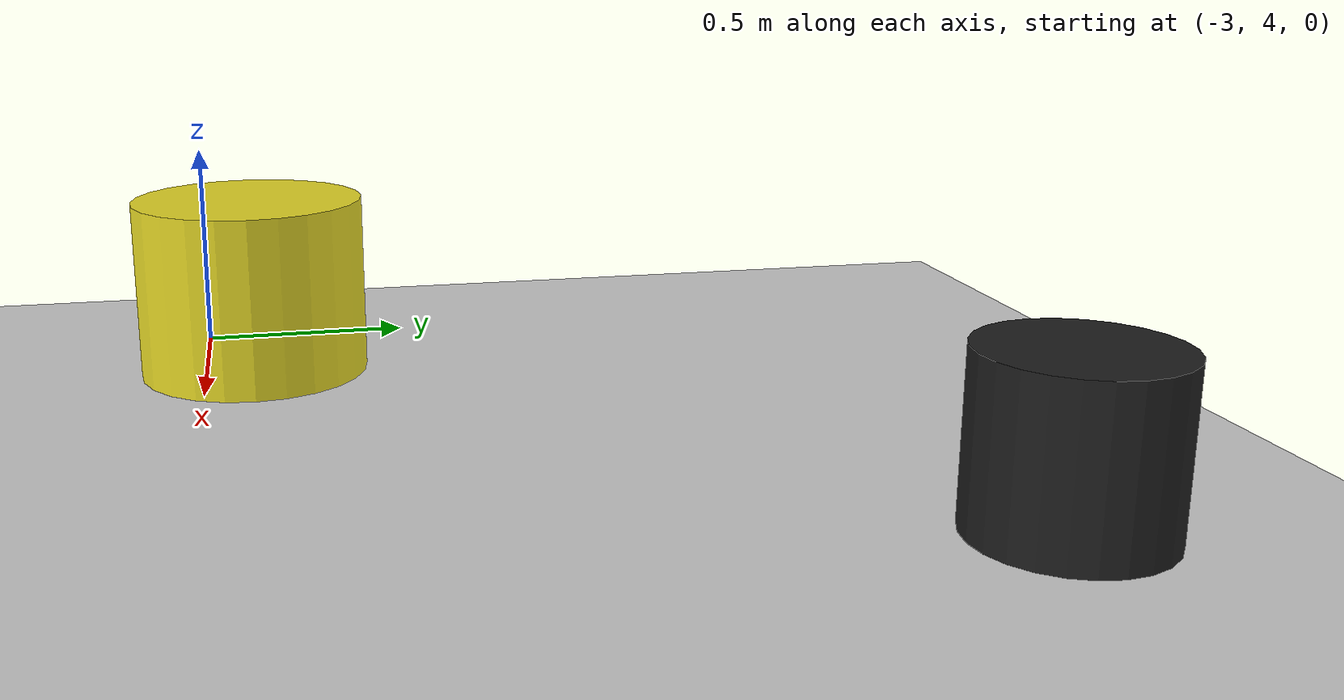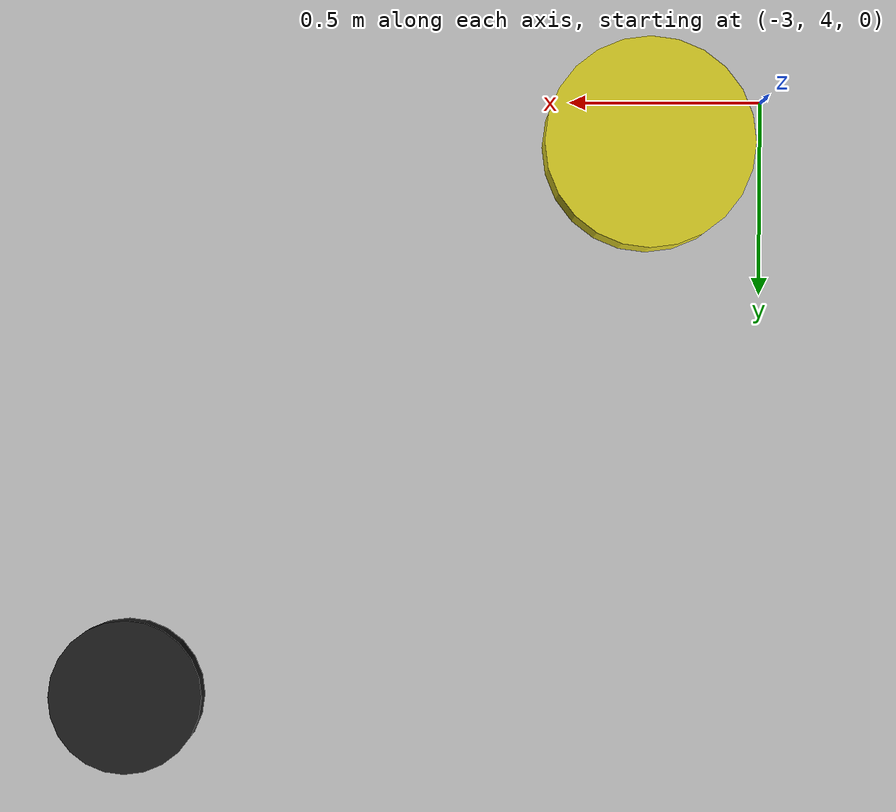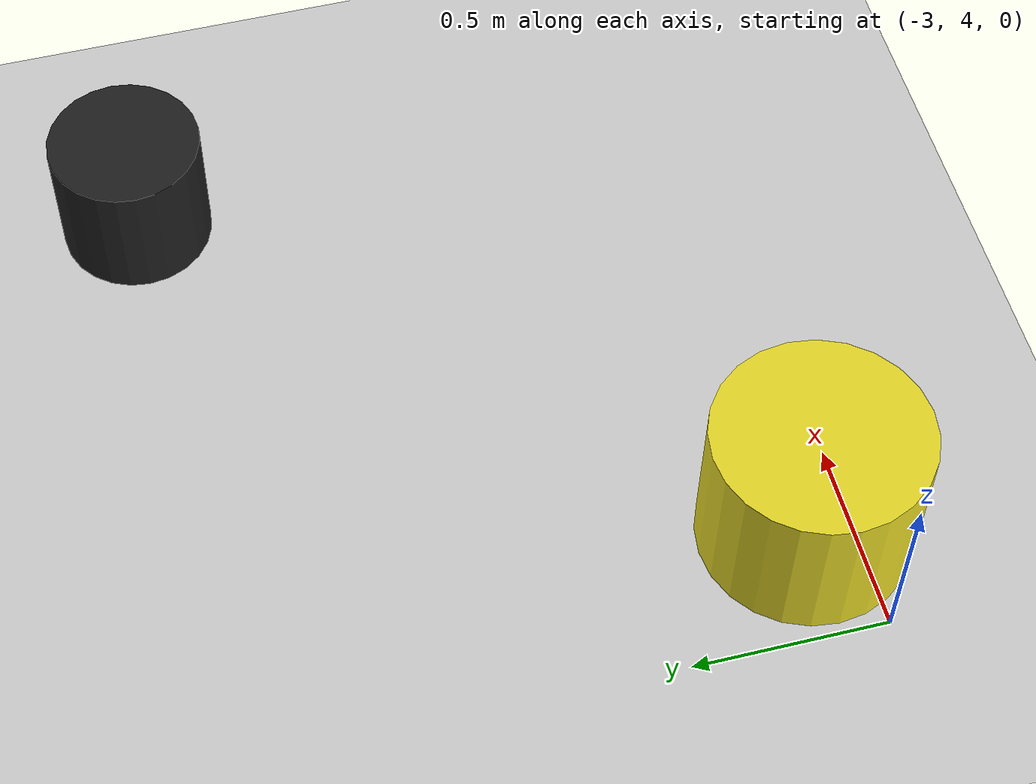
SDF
<sdf version="1.7">
 <world name="default">
  <model name="ground_plane">
   <static>1</static>
   <link name="link">
    <collision name="collision">
     <laser_retro>100</laser_retro>
     <geometry><plane><normal>0 0 1</normal><size>100 100</size></plane></geometry>
     <surface><friction><ode><mu>100</mu><mu2>50</mu2></ode></friction></surface>
    </collision>
    <visual name="visual">
     <laser_retro>100</laser_retro>
     <cast_shadows>0</cast_shadows>
     <geometry><plane><normal>0 0 1</normal><size>100 100</size></plane></geometry>
     <material>
      <script><uri>file://media/materials/scripts/gazebo.material</uri><name>Gazebo/Grey</name></script>
     </material>
    </visual>
   </link>
  </model>
  <model name="yellow_sylinder_clone">
   <link name="link">
    <inertial>
     <mass>0.125845</mass>
     <inertia>
      <ixx>0.00422405</ixx>
      <ixy>0</ixy>
      <ixz>0</ixz>
      <iyy>0.00422405</iyy>
      <iyz>0</iyz>
      <izz>0.00465291</izz>
     </inertia>
    </inertial>
    <pose>0.071603 -0.063343 -0.135618 0 -0 0</pose>
    <visual name="visual">
     <geometry><cylinder><radius>0.271931</radius><length>0.425377</length></cylinder></geometry>
     <material>
      <script><name>Gazebo/Yellow</name><uri>file://media/materials/scripts/gazebo.material</uri></script>
      <shader type="pixel"><normal_map>__default__</normal_map></shader>
      <ambient>1 1 0 1</ambient>
      <diffuse>1 1 0 1</diffuse>
      <emissive>0 0 0 1</emissive>
     </material>
    </visual>
    <collision name="collision">
     <geometry><cylinder><radius>0.271931</radius><length>0.425377</length></cylinder></geometry>
     <surface>
      <friction>
       <ode><mu>1</mu><mu2>1</mu2><fdir1>0 0 0</fdir1><slip1>0</slip1><slip2>0</slip2></ode>
       <torsional>
        <coefficient>1</coefficient>
        <patch_radius>0</patch_radius>
        <surface_radius>0</surface_radius>
        <use_patch_radius>1</use_patch_radius>
        <ode><slip>0</slip></ode>
       </torsional>
      </friction>
      <bounce><restitution_coefficient>0</restitution_coefficient><threshold>1e+06</threshold></bounce>
      <contact>
       <collide_without_contact>0</collide_without_contact>
       <collide_without_contact_bitmask>1</collide_without_contact_bitmask>
       <collide_bitmask>1</collide_bitmask>
       <ode>
        <soft_cfm>0</soft_cfm>
        <soft_erp>0.2</soft_erp>
        <kp>1e+13</kp>
        <kd>1</kd>
        <max_vel>0.01</max_vel>
        <min_depth>0</min_depth>
       </ode>
       <bullet>
        <split_impulse>1</split_impulse>
        <split_impulse_penetration_threshold>-0.01</split_impulse_penetration_threshold>
        <soft_cfm>0</soft_cfm>
        <soft_erp>0.2</soft_erp>
        <kp>1e+13</kp>
        <kd>1</kd>
       </bullet>
      </contact>
     </surface>
    </collision>
   </link>
   <static>0</static>
   <pose>-2.77209 4.18161 0.348306 -0 -0 -4.1e-05</pose>
  </model>
  <model name="Black_sylinder">
   <link name="link">
    <inertial>
     <mass>0.0550445</mass>
     <inertia>
      <ixx>0.00110459</ixx>
      <ixy>0</ixy>
      <ixz>0</ixz>
      <iyy>0.00110459</iyy>
      <iyz>0</iyz>
      <izz>0.00108012</izz>
     </inertia>
    </inertial>
    <visual name="visual">
     <geometry><cylinder><radius>0.198105</radius><length>0.350812</length></cylinder></geometry>
     <material>
      <script><name>Gazebo/Black</name><uri>file://media/materials/scripts/gazebo.material</uri></script>
      <shader type="pixel"><normal_map>__default__</normal_map></shader>
      <ambient>0 0 0 1</ambient>
      <diffuse>0 0 0 1</diffuse>
      <specular>0.1 0.1 0.1 1</specular>
      <emissive>0 0 0 1</emissive>
     </material>
    </visual>
    <collision name="collision">
     <geometry><cylinder><radius>0.198105</radius><length>0.350812</length></cylinder></geometry>
     <surface>
      <friction>
       <ode><mu>1</mu><mu2>1</mu2><fdir1>0 0 0</fdir1><slip1>0</slip1><slip2>0</slip2></ode>
       <torsional>
        <coefficient>1</coefficient>
        <patch_radius>0</patch_radius>
        <surface_radius>0</surface_radius>
        <use_patch_radius>1</use_patch_radius>
        <ode><slip>0</slip></ode>
       </torsional>
      </friction>
      <bounce><restitution_coefficient>0</restitution_coefficient><threshold>1e+06</threshold></bounce>
      <contact>
       <collide_without_contact>0</collide_without_contact>
       <collide_without_contact_bitmask>1</collide_without_contact_bitmask>
       <collide_bitmask>1</collide_bitmask>
       <ode>
        <soft_cfm>0</soft_cfm>
        <soft_erp>0.2</soft_erp>
        <kp>1e+13</kp>
        <kd>1</kd>
        <max_vel>0.01</max_vel>
        <min_depth>0</min_depth>
       </ode>
       <bullet>
        <split_impulse>1</split_impulse>
        <split_impulse_penetration_threshold>-0.01</split_impulse_penetration_threshold>
        <soft_cfm>0</soft_cfm>
        <soft_erp>0.2</soft_erp>
        <kp>1e+13</kp>
        <kd>1</kd>
       </bullet>
      </contact>
     </surface>
    </collision>
   </link>
   <static>0</static>
   <pose>-1.35597 5.55466 0.175406 -0 -0 -0</pose>
  </model>
 </world>
</sdf>
